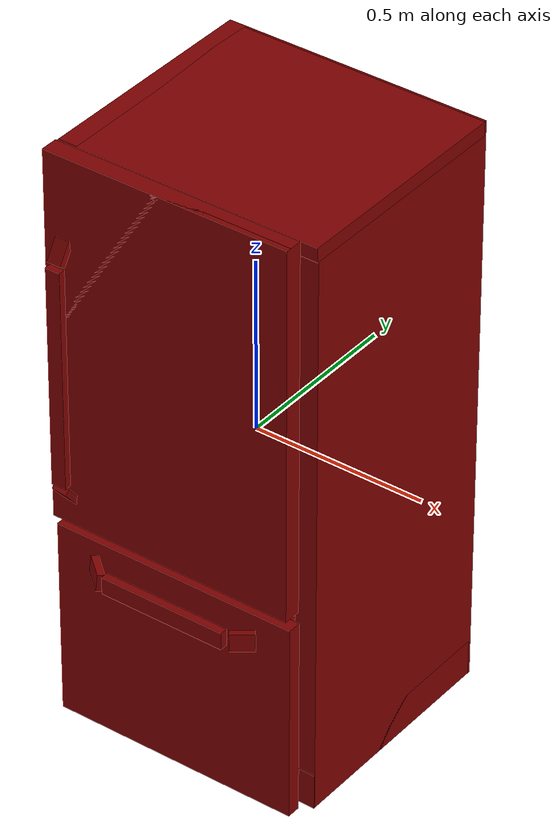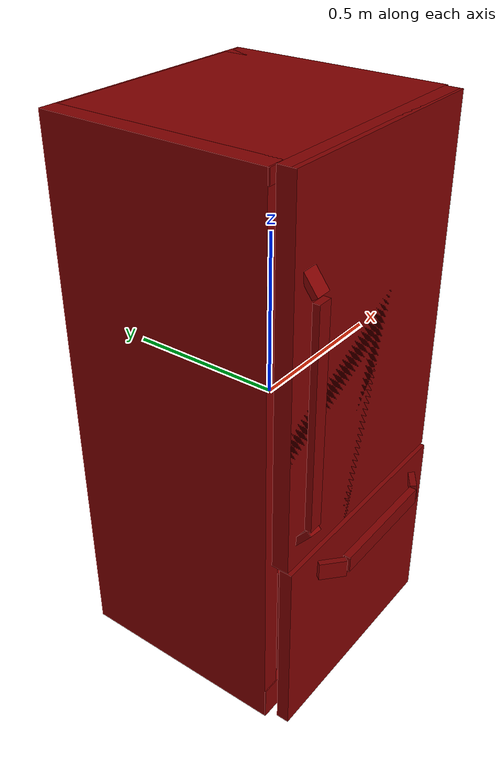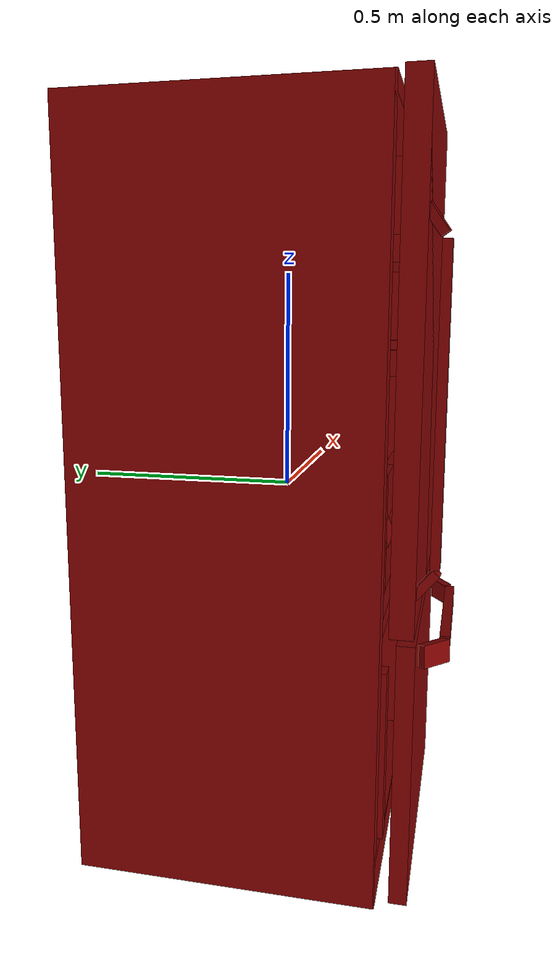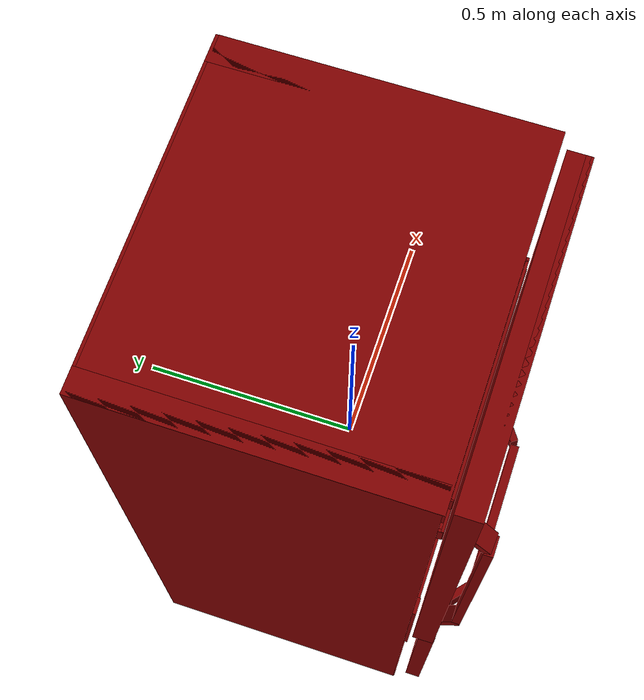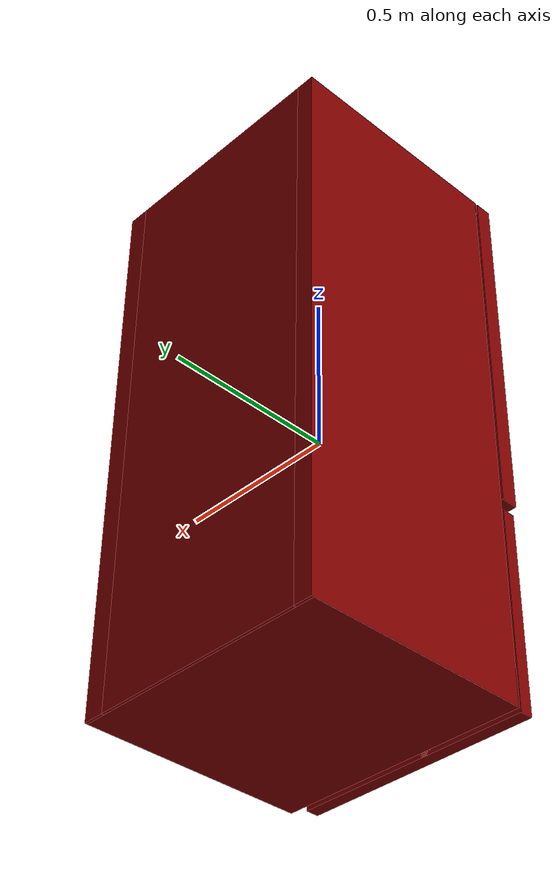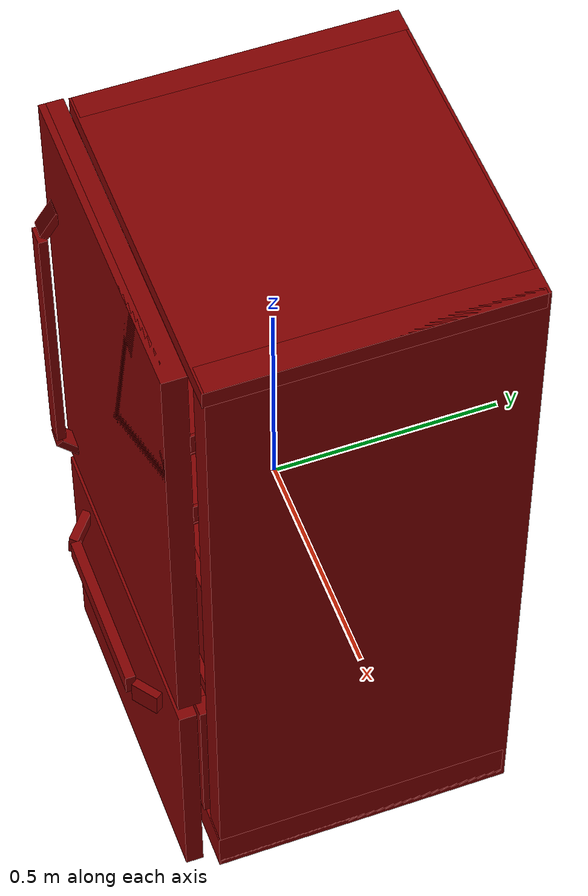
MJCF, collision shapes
<?xml version='1.0' encoding='UTF-8'?>
<mujoco model="model">
  <option timestep="0.002" gravity="0.0 0.0 -9.81"/>
  <compiler angle="radian"/>
  <asset>
    <mesh file="visuals/freezer0.obj" name="freezer0_vis"/>
    <mesh file="visuals/fridge_door.obj" name="fridge_door_vis"/>
    <mesh file="visuals/fridge_door_Clear.obj" name="fridge_door_Clear_vis"/>
    <mesh file="visuals/fridge_drawer0.obj" name="fridge_drawer0_vis"/>
    <mesh file="visuals/Body001.obj" name="Body001_vis"/>
    <mesh file="visuals/Body001_Clear.obj" name="Body001_Clear_vis"/>
    <texture file="visuals/T_BC001.png" name="Body001_material" type="2d"/>
    <material name="Body001_material" rgba="1 1 1 1.0" texture="Body001_material" shininess="0.4472135901451111" specular="0.5"/>
    <texture file="visuals/T_BC001.png" name="freezer0_material" type="2d"/>
    <material name="freezer0_material" rgba="1 1 1 1.0" texture="freezer0_material" shininess="0.4472135901451111" specular="0.5"/>
    <texture file="visuals/T_BC001.png" name="fridge_door_material" type="2d"/>
    <material name="fridge_door_material" rgba="1 1 1 1.0" texture="fridge_door_material" shininess="0.4472135901451111" specular="0.5"/>
    <material name="fridge_door_Clear_material" rgba="0.5 0.5 0.5 0.699999988079071" shininess="0.4472135901451111" specular="0.3103448502657381"/>
    <texture file="visuals/T_BC001.png" name="fridge_drawer0_material" type="2d"/>
    <material name="fridge_drawer0_material" rgba="1 1 1 1.0" texture="fridge_drawer0_material" shininess="0.4472135901451111" specular="0.3103448502657381"/>
    <material name="Body001_Clear_material" rgba="0.5 0.5 0.5 0.699999988079071" shininess="0.4472135901451111" specular="0.3103448502657381"/>
  </asset>
  <default>
    <default class="visual">
      <geom conaffinity="0" contype="0" group="1" type="mesh"/>
    </default>
    <default class="collision">
      <geom group="0" rgba="0.5 0 0 0.5"/>
    </default>
    <default class="spawn">
      <geom group="0" rgba="1 1 1 0.5" contype="0" conaffinity="0"/>
      <site group="0" rgba="1 1 1 0.5"/>
    </default>
    <default class="region">
      <geom group="1" conaffinity="0" contype="0" rgba="0 1 0 0"/>
    </default>
  </default>
  <worldbody>
    <body>
      <body name="object">
        <geom mesh="Body001_vis" type="mesh" solimp="0.998 0.998 0.001" solref="0.001 1" friction="0.95 0.3 0.1" class="visual" material="Body001_material"/>
        <geom class="collision" type="box" pos="-0.00017270 0.06218779 -0.79971355" size="0.3843664228916168 0.335809588432312 0.05278841033577919" quat="1.0 0.0 0.0 0.0"/>
        <geom class="collision" type="box" pos="-0.35732687 0.06747815 -0.00474507" size="0.027672870084643364 0.3383861780166626 0.8477545380592346" quat="1.0 0.0 0.0 0.0"/>
        <geom class="collision" type="box" pos="0.35253209 0.06747818 -0.00474503" size="0.031661663204431534 0.3383862376213074 0.8477543592453003" quat="1.0 0.0 0.0 0.0"/>
        <geom class="collision" type="box" pos="-0.00284919 0.38165740 -0.00472053" size="0.3533921241760254 0.0242064967751503 0.8477113842964172" quat="1.0 0.0 0.0 0.0"/>
        <geom class="collision" type="box" pos="-0.00003482 0.06181085 0.82284176" size="0.38463035225868225 0.33757251501083374 0.020167645066976547" quat="1.0 0.0 0.0 0.0"/>
        <geom class="collision" type="box" pos="-0.00040338 0.09681653 0.08211935" size="0.3299541771411896 0.27153390645980835 0.006424814462661743" quat="1.0 0.0 0.0 0.0"/>
        <geom class="collision" type="box" pos="-0.00040338 0.09681679 0.45986578" size="0.3299545645713806 0.27153122425079346 0.006424882914870977" quat="1.0 0.0 0.0 0.0"/>
        <geom class="collision" type="box" pos="-0.00040338 0.04836612 -0.26115707" size="0.32612743973731995 0.31343159079551697 0.019911129027605057" quat="1.0 0.0 0.0 0.0"/>
        <body name="freezer0">
          <geom class="region" name="reg_freezer0" type="box" pos="0.001996775000000006 0.009421554999999998 -0.53816384" size="0.250662265 0.274475005 0.18014784"/>
          <joint axis="0.0 -1.0 0.0" pos="0.00087560 -0.08184088 -0.55041802" limited="true" name="freezer0_door_joint" range="0.0 0.5" type="slide" damping="1" frictionloss="1" armature=".01" stiffness="0.05"/>
          <geom mesh="freezer0_vis" type="mesh" solimp="0.998 0.998 0.001" solref="0.001 1" friction="0.95 0.3 0.1" class="visual" material="freezer0_material"/>
          <geom class="collision" type="box" pos="-0.00445542 -0.30875792 -0.55021274" size="0.3616904616355896 0.005913001485168934 0.2950248420238495" quat="1.0 0.0 0.0 0.0" name="freezer0_door_main"/>
          <geom class="collision" type="box" pos="0.01035629 -0.39532353 -0.32315895" size="0.1859046369791031 0.011389977298676968 0.025441603735089302" quat="1.0 0.0 0.0 0.0" name="freezer0_door_handle_main"/>
          <geom class="collision" type="box" pos="0.23626423 -0.37309425 -0.32315889" size="0.03245865926146507 0.009980162605643272 0.02541915327310562" quat="0.026509642601013184 -0.3011360168457031 0.9524694085121155 -0.037635162472724915" name="freezer0_door_handle_2"/>
          <geom class="collision" type="box" pos="-0.21586967 -0.37372010 -0.32315901" size="0.040137507021427155 0.009861577302217484 0.025416214019060135" quat="0.03149041905999184 -0.3415834903717041 -0.9385782480239868 0.03741570934653282" name="freezer0_door_handle_1"/>
          <geom class="collision" type="box" pos="0.28368631 0.01797385 -0.54113734" size="0.02238910272717476 0.2984488904476166 0.19422630965709686" quat="1.0 0.0 0.0 0.0"/>
          <geom class="collision" type="box" pos="-0.27946383 0.01797377 -0.54113734" size="0.02238914929330349 0.2984491288661957 0.19422635436058044" quat="1.0 0.0 0.0 0.0"/>
          <geom class="collision" type="box" pos="0.00211126 0.30395458 -0.54113752" size="0.30396217107772827 0.012470296584069729 0.19422651827335358" quat="1.0 0.0 0.0 0.0"/>
          <geom class="collision" type="box" pos="0.00211127 0.01890874 -0.73053133" size="0.30396226048469543 0.29751431941986084 0.004833616781979799" quat="1.0 0.0 0.0 0.0"/>
          <geom class="collision" type="box" pos="-0.00445542 -0.32244640 -0.55021274" size="0.36169248819351196 0.019601523876190186 0.2950272560119629" quat="1.0 0.0 0.0 0.0"/>
        </body>
        <body name="fridge_door">
          <joint axis="0.0 0.0 1.0" pos="0.34599411 -0.31463020 0.47188595" limited="true" name="fridge_door_joint" range="0.0 1.5707963267948966" type="hinge" damping="1" frictionloss="1" armature=".01" stiffness="0.05"/>
          <geom mesh="fridge_door_vis" type="mesh" solimp="0.998 0.998 0.001" solref="0.001 1" friction="0.95 0.3 0.1" class="visual" material="fridge_door_material"/>
          <geom class="collision" type="box" pos="-0.00040338 -0.23306096 0.51287454" size="0.2680552899837494 0.05169248208403587 0.0026308964006602764" quat="1.0 0.0 0.0 0.0"/>
          <geom class="collision" type="box" pos="-0.00040338 -0.18136724 0.53624517" size="0.2680552899837494 0.02683096192777157 0.0031687419395893812" quat="0.7433175444602966 0.6689386963844299 -1.370751565657062e-16 2.3012940536639805e-17"/>
          <geom class="collision" type="box" pos="-0.00040338 -0.28005527 0.53707135" size="0.26804861426353455 0.003174012992531061 0.026299597695469856" quat="1.0 0.0 0.0 0.0"/>
          <geom class="collision" type="box" pos="-0.26608524 -0.22778802 0.53707135" size="0.003381570568308234 0.054306916892528534 0.02629960887134075" quat="1.0 0.0 0.0 0.0"/>
          <geom class="collision" type="box" pos="0.26197514 -0.22778802 0.53707135" size="0.003381570568308234 0.054306916892528534 0.02629960887134075" quat="1.0 0.0 0.0 0.0"/>
          <geom class="collision" type="box" pos="-0.00040338 -0.23306096 0.28708372" size="0.2680552899837494 0.051692087203264236 0.002630876377224922" quat="1.0 0.0 0.0 0.0"/>
          <geom class="collision" type="box" pos="-0.00040338 -0.18136724 0.31045428" size="0.2680552899837494 0.02683096192777157 0.0031687419395893812" quat="0.7433175444602966 0.6689386963844299 -1.370751565657062e-16 2.3012940536639805e-17"/>
          <geom class="collision" type="box" pos="-0.00040338 -0.28005527 0.31128052" size="0.2680496573448181 0.003174012992531061 0.026299597695469856" quat="1.0 0.0 0.0 0.0"/>
          <geom class="collision" type="box" pos="-0.26608524 -0.22778802 0.31128052" size="0.003381570568308234 0.054306916892528534 0.02629960887134075" quat="1.0 0.0 0.0 0.0"/>
          <geom class="collision" type="box" pos="0.26197514 -0.22778802 0.31128052" size="0.003381570568308234 0.054306916892528534 0.02629960887134075" quat="1.0 0.0 0.0 0.0"/>
          <geom class="collision" type="box" pos="-0.01830131 -0.33142652 0.30756634" size="0.3616914749145508 0.007558733224868774 0.5445191264152527" quat="1.0 0.0 0.0 0.0" name="fridge_door_main"/>
          <geom class="collision" type="box" pos="-0.32368505 -0.37332489 0.22600044" size="0.021720388904213905 0.010037459433078766 0.322989284992218" quat="1.0 0.0 0.0 0.0" name="fridge_door_handle_main"/>
          <geom class="collision" type="box" pos="-0.32368505 -0.35131072 0.58555400" size="0.03235507756471634 0.00965392030775547 0.021713199093937874" quat="0.6922426819801331 -0.18632327020168304 0.6547523736953735 -0.23954761028289795" name="fridge_door_handle_2"/>
          <geom class="collision" type="box" pos="-0.32368505 -0.35197659 -0.13684183" size="0.040012627840042114 0.009520117193460464 0.0217122845351696" quat="0.6414079070091248 0.2679930031299591 0.6859421133995056 0.21507927775382996" name="fridge_door_handle_1"/>
          <geom class="collision" type="box" pos="-0.01830131 -0.31335770 0.30756634" size="0.3616931140422821 0.025627538561820984 0.5445191264152527" quat="1.0 0.0 0.0 0.0"/>
          <body name="fridge_door_Clear">
            <geom mesh="fridge_door_Clear_vis" type="mesh" solimp="0.998 0.998 0.001" solref="0.001 1" friction="0.95 0.3 0.1" class="visual" material="fridge_door_Clear_material"/>
            <geom class="collision" type="box" pos="-0.00040338 -0.23306096 0.51287454" size="0.2680552899837494 0.05169248208403587 0.0026308964006602764" quat="1.0 0.0 0.0 0.0"/>
            <geom class="collision" type="box" pos="-0.00040338 -0.18136724 0.53624517" size="0.2680552899837494 0.02683096192777157 0.0031687419395893812" quat="0.7433175444602966 0.6689386963844299 -1.370751565657062e-16 2.3012940536639805e-17"/>
            <geom class="collision" type="box" pos="-0.00040338 -0.28005527 0.53707135" size="0.26804861426353455 0.003174012992531061 0.026299597695469856" quat="1.0 0.0 0.0 0.0"/>
            <geom class="collision" type="box" pos="-0.26608524 -0.22778802 0.53707135" size="0.003381570568308234 0.054306916892528534 0.02629960887134075" quat="1.0 0.0 0.0 0.0"/>
            <geom class="collision" type="box" pos="0.26197514 -0.22778802 0.53707135" size="0.003381570568308234 0.054306916892528534 0.02629960887134075" quat="1.0 0.0 0.0 0.0"/>
            <geom class="collision" type="box" pos="-0.00040338 -0.23306096 0.28708372" size="0.2680552899837494 0.051692087203264236 0.002630876377224922" quat="1.0 0.0 0.0 0.0"/>
            <geom class="collision" type="box" pos="-0.00040338 -0.18136724 0.31045428" size="0.2680552899837494 0.02683096192777157 0.0031687419395893812" quat="0.7433175444602966 0.6689386963844299 -1.370751565657062e-16 2.3012940536639805e-17"/>
            <geom class="collision" type="box" pos="-0.00040338 -0.28005527 0.31128052" size="0.2680496573448181 0.003174012992531061 0.026299597695469856" quat="1.0 0.0 0.0 0.0"/>
            <geom class="collision" type="box" pos="-0.26608524 -0.22778802 0.31128052" size="0.003381570568308234 0.054306916892528534 0.02629960887134075" quat="1.0 0.0 0.0 0.0"/>
            <geom class="collision" type="box" pos="0.26197514 -0.22778802 0.31128052" size="0.003381570568308234 0.054306916892528534 0.02629960887134075" quat="1.0 0.0 0.0 0.0"/>
          </body>
        </body>
        <body name="fridge_drawer0">
          <geom class="region" name="reg_fridge_drawer0" type="box" pos="-0.005733785000000019 0.04653616000000001 -0.098348585" size="0.26981134500000004 0.26922123000000003 0.11538429500000001"/>
          <joint axis="0.0 -1.0 0.0" pos="-0.00765978 0.04305572 -0.09754609" limited="true" name="fridge_drawer0_joint" range="0.0 0.5" type="slide" damping="1" frictionloss="1" armature=".01" stiffness="0.05"/>
          <geom mesh="fridge_drawer0_vis" type="mesh" solimp="0.998 0.998 0.001" solref="0.001 1" friction="0.95 0.3 0.1" class="visual" material="fridge_drawer0_material"/>
          <geom class="collision" type="box" pos="-0.00405594 0.33264417 -0.10234943" size="0.28098952770233154 0.0033920498099178076 0.12481392920017242" quat="1.0 0.0 0.0 0.0"/>
          <geom class="collision" type="box" pos="-0.28777725 0.04530926 -0.10234943" size="0.004088204354047775 0.2835831046104431 0.12481360137462616" quat="1.0 0.0 0.0 0.0"/>
          <geom class="collision" type="box" pos="0.27333921 0.04530926 -0.10234943" size="0.003744848072528839 0.2835826277732849 0.12481324374675751" quat="1.0 0.0 0.0 0.0"/>
          <geom class="collision" type="box" pos="-0.00749221 0.04530926 -0.22370735" size="0.2809881269931793 0.2835821509361267 0.003200291423127055" quat="1.0 0.0 0.0 0.0"/>
          <geom class="collision" type="box" pos="-0.00441690 -0.24047794 -0.09753382" size="0.07190626859664917 0.005427333060652018 0.03301795572042465" quat="0.9871617555618286 -0.15972371399402618 0.0 0.0"/>
          <geom class="collision" type="box" pos="-0.18301085 -0.24061727 -0.09542247" size="0.1066889539361 0.010428276844322681 0.1391587108373642" quat="1.0 0.0 0.0 0.0"/>
          <geom class="collision" type="box" pos="-0.00441688 -0.24061727 -0.18421978" size="0.07190685719251633 0.01042825635522604 0.05014755576848984" quat="1.0 0.0 0.0 0.0"/>
          <geom class="collision" type="box" pos="-0.00441688 -0.24061727 -0.01079681" size="0.07190681248903275 0.010428253561258316 0.05453233793377876" quat="1.0 0.0 0.0 0.0"/>
          <geom class="collision" type="box" pos="0.17272390 -0.24061727 -0.09542247" size="0.10523539036512375 0.010428258217871189 0.13915841281414032" quat="1.0 0.0 0.0 0.0"/>
          <geom class="collision" type="box" pos="-0.00441690 -0.23197999 -0.09884834" size="0.07190626859664917 0.0022927906829863787 0.03352512791752815" quat="1.0 0.0 0.0 0.0"/>
        </body>
        <body name="Body001_Clear">
          <geom mesh="Body001_Clear_vis" type="mesh" solimp="0.998 0.998 0.001" solref="0.001 1" friction="0.95 0.3 0.1" class="visual" material="Body001_Clear_material"/>
          <geom class="collision" type="box" pos="-0.00040338 0.09681653 0.08211935" size="0.3299541771411896 0.27153390645980835 0.006424814462661743" quat="1.0 0.0 0.0 0.0"/>
          <geom class="collision" type="box" pos="-0.00040338 0.09681679 0.45986578" size="0.3299545645713806 0.27153122425079346 0.006424882914870977" quat="1.0 0.0 0.0 0.0"/>
        </body>
        <geom class="region" name="reg_fridge_shelf0" type="box" pos="-0.004767715000000006 0.0908464 0.25730882499999996" size="0.319012175 0.25459693 0.163966745"/>
        <geom class="region" name="reg_fridge_shelf1" type="box" pos="-0.004767715000000006 0.0908464 0.6339370599999999" size="0.319012175 0.25459693 0.16215253999999998"/>
        <geom class="region" name="reg_main" type="box" pos="0.00013451000000000435 0.029491939999999994 2.7699999999852842e-06" size="0.38612817 0.3773724 0.8534972200000001"/>
      </body>
    </body>
  </worldbody>
  <actuator>
    <motor name="freezer0_door_joint_actuator" joint="freezer0_door_joint" gear="50"/>
    <motor name="fridge_door_joint_actuator" joint="fridge_door_joint" gear="50"/>
    <motor name="fridge_drawer0_joint_actuator" joint="fridge_drawer0_joint" gear="50"/>
  </actuator>
</mujoco>
